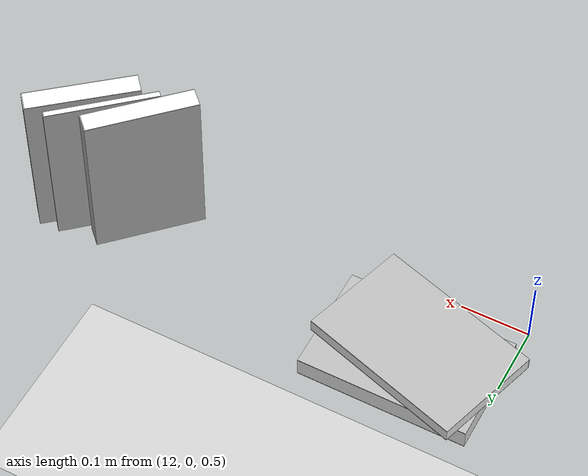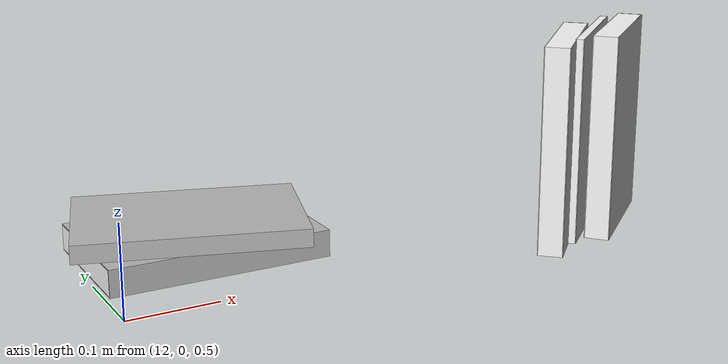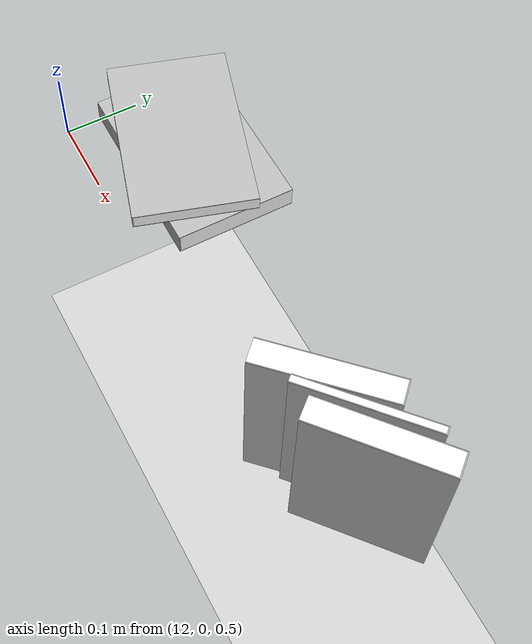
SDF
<sdf version="1.6">
 <world name="default">
  <model name="ground_plane">
   <static>1</static>
   <link name="link">
    <collision name="collision">
     <geometry><plane><normal>0 0 1</normal><size>100 100</size></plane></geometry>
     <surface>
      <contact><collide_bitmask>65535</collide_bitmask></contact>
      <friction><ode><mu>100</mu><mu2>50</mu2></ode></friction>
     </surface>
    </collision>
    <visual name="visual">
     <cast_shadows>0</cast_shadows>
     <geometry><plane><normal>0 0 1</normal><size>100 100</size></plane></geometry>
     <material>
      <script><uri>file://media/materials/scripts/gazebo.material</uri><name>Gazebo/Grey</name></script>
     </material>
    </visual>
   </link>
  </model>
  <model name="book_15">
   <link name="cover">
    <pose>0 -0.000108 0.015405 0 -0 0</pose>
    <visual name="visual">
     <geometry><box><size>0.245 0.16 0.03</size></box></geometry>
     <material>
      <script>
       <uri>model://book_15/materials/scripts</uri>
       <uri>model://book_15/materials/textures</uri>
       <name>book_15</name>
      </script>
     </material>
    </visual>
    <collision name="collision"><geometry><box><size>0.245 0.16 0.03</size></box></geometry></collision>
   </link>
   <link name="page">
    <pose>0 0.000608 0.015405 0 -0 0</pose>
    <visual name="visual">
     <geometry><box><size>0.24502 0.15862 0.028</size></box></geometry>
     <material>
      <lighting>1</lighting>
      <ambient>1 1 1 1</ambient>
      <diffuse>1 1 1 1</diffuse>
      <specular>0.01 0.01 0.01 1</specular>
      <emissive>0 0 0 1</emissive>
      <shader type="vertex"><normal_map>__default__</normal_map></shader>
     </material>
    </visual>
    <collision name="collision"><geometry><box><size>0.245 0.16 0.03</size></box></geometry></collision>
   </link>
   <static>1</static>
   <pose>12.1234 0.126335 0.505643 0 -0 0</pose>
  </model>
  <model name="book_5">
   <link name="cover">
    <pose>0 -0.000108 0.01 0 -0 0</pose>
    <visual name="visual">
     <geometry><box><size>0.245 0.16 0.02</size></box></geometry>
     <material>
      <script>
       <uri>model://book_5/materials/scripts</uri>
       <uri>model://book_5/materials/textures</uri>
       <name>book_5</name>
      </script>
     </material>
    </visual>
    <collision name="collision"><geometry><box><size>0.245 0.16 0.02</size></box></geometry></collision>
   </link>
   <link name="page">
    <pose>0 0.000608 0.01 0 -0 0</pose>
    <visual name="visual">
     <geometry><box><size>0.24502 0.15862 0.018</size></box></geometry>
     <material>
      <lighting>1</lighting>
      <ambient>1 1 1 1</ambient>
      <diffuse>1 1 1 1</diffuse>
      <specular>0.01 0.01 0.01 1</specular>
      <emissive>0 0 0 1</emissive>
      <shader type="vertex"><normal_map>__default__</normal_map></shader>
     </material>
    </visual>
    <collision name="collision"><geometry><box><size>0.245 0.16 0.018</size></box></geometry></collision>
   </link>
   <static>1</static>
   <pose>12.1119 0.115169 0.537655 0 0 -0.300304</pose>
  </model>
  <model name="book_19">
   <link name="cover">
    <pose>0 -0.000108 0.015405 0 -0 0</pose>
    <visual name="visual">
     <geometry><box><size>0.245 0.16 0.03</size></box></geometry>
     <material>
      <script>
       <uri>model://book_19/materials/scripts</uri>
       <uri>model://book_19/materials/textures</uri>
       <name>book_19</name>
      </script>
     </material>
    </visual>
    <collision name="collision"><geometry><box><size>0.245 0.16 0.03</size></box></geometry></collision>
   </link>
   <link name="page">
    <pose>0 0.000608 0.015405 0 -0 0</pose>
    <visual name="visual">
     <geometry><box><size>0.24502 0.15862 0.028</size></box></geometry>
     <material>
      <lighting>1</lighting>
      <ambient>1 1 1 1</ambient>
      <diffuse>1 1 1 1</diffuse>
      <specular>0.01 0.01 0.01 1</specular>
      <emissive>0 0 0 1</emissive>
      <shader type="vertex"><normal_map>__default__</normal_map></shader>
     </material>
    </visual>
    <collision name="collision"><geometry><box><size>0.245 0.16 0.03</size></box></geometry></collision>
   </link>
   <static>1</static>
   <pose>12.6388 0.081095 0.596425 -0.866763 -1.57079 3.14159</pose>
  </model>
  <model name="book_7">
   <link name="cover">
    <pose>0 -0.000108 0.005 0 -0 0</pose>
    <visual name="visual">
     <geometry><box><size>0.245 0.16 0.01</size></box></geometry>
     <material>
      <script>
       <uri>model://book_7/materials/scripts</uri>
       <uri>model://book_7/materials/textures</uri>
       <name>book_7</name>
      </script>
     </material>
    </visual>
    <collision name="collision"><geometry><box><size>0.245 0.16 0.01</size></box></geometry></collision>
   </link>
   <link name="page">
    <pose>0 0.000608 0.005 0 -0 0</pose>
    <visual name="visual">
     <geometry><box><size>0.24502 0.15862 0.008</size></box></geometry>
     <material>
      <lighting>1</lighting>
      <ambient>1 1 1 1</ambient>
      <diffuse>1 1 1 1</diffuse>
      <specular>0.01 0.01 0.01 1</specular>
      <emissive>0 0 0 1</emissive>
      <shader type="vertex"><normal_map>__default__</normal_map></shader>
     </material>
    </visual>
    <collision name="collision"><geometry><box><size>0.245 0.16 0.008</size></box></geometry></collision>
   </link>
   <static>1</static>
   <pose>12.6101 0.078069 0.595721 -0.843293 -1.57079 3.14159</pose>
  </model>
  <model name="book_2">
   <link name="cover">
    <pose>0 -0.000108 0.015405 0 -0 0</pose>
    <visual name="visual">
     <geometry><box><size>0.245 0.16 0.03</size></box></geometry>
     <material>
      <script>
       <uri>model://book_2/materials/scripts</uri>
       <uri>model://book_2/materials/textures</uri>
       <name>book_2</name>
      </script>
     </material>
    </visual>
    <collision name="collision"><geometry><box><size>0.245 0.16 0.03</size></box></geometry></collision>
   </link>
   <link name="page">
    <pose>0 0.000608 0.015405 0 -0 0</pose>
    <visual name="visual">
     <geometry><box><size>0.24502 0.15862 0.028</size></box></geometry>
     <material>
      <lighting>1</lighting>
      <ambient>1 1 1 1</ambient>
      <diffuse>1 1 1 1</diffuse>
      <specular>0.01 0.01 0.01 1</specular>
      <emissive>0 0 0 1</emissive>
      <shader type="vertex"><normal_map>__default__</normal_map></shader>
     </material>
    </visual>
    <collision name="collision"><geometry><box><size>0.245 0.16 0.03</size></box></geometry></collision>
   </link>
   <static>1</static>
   <pose>12.553 0.069111 0.594259 -0.781933 -1.57079 3.14159</pose>
  </model>
 </world>
</sdf>
